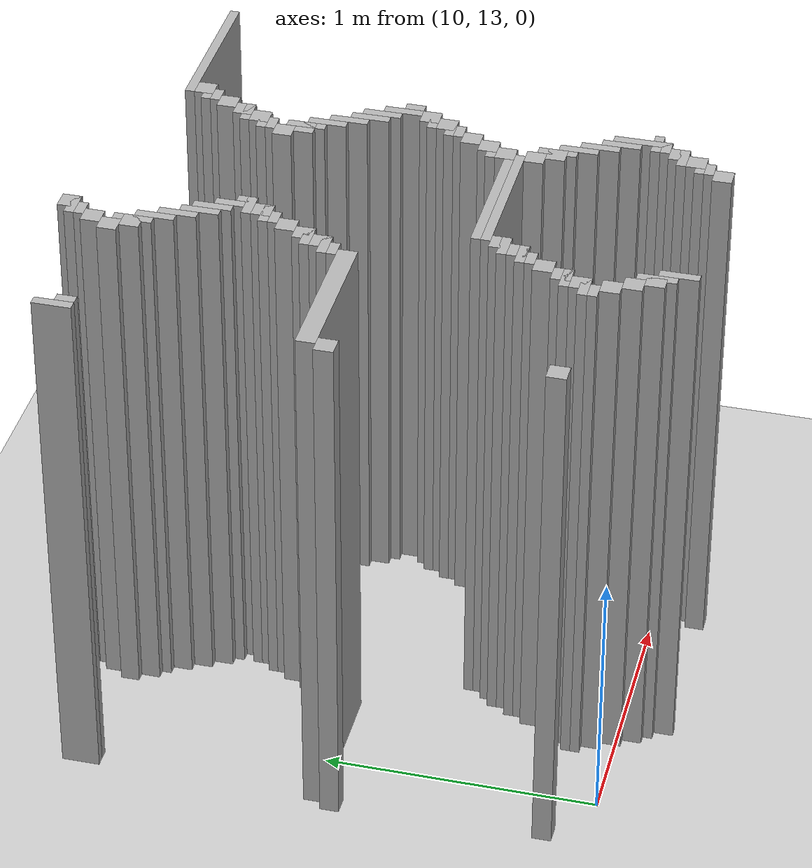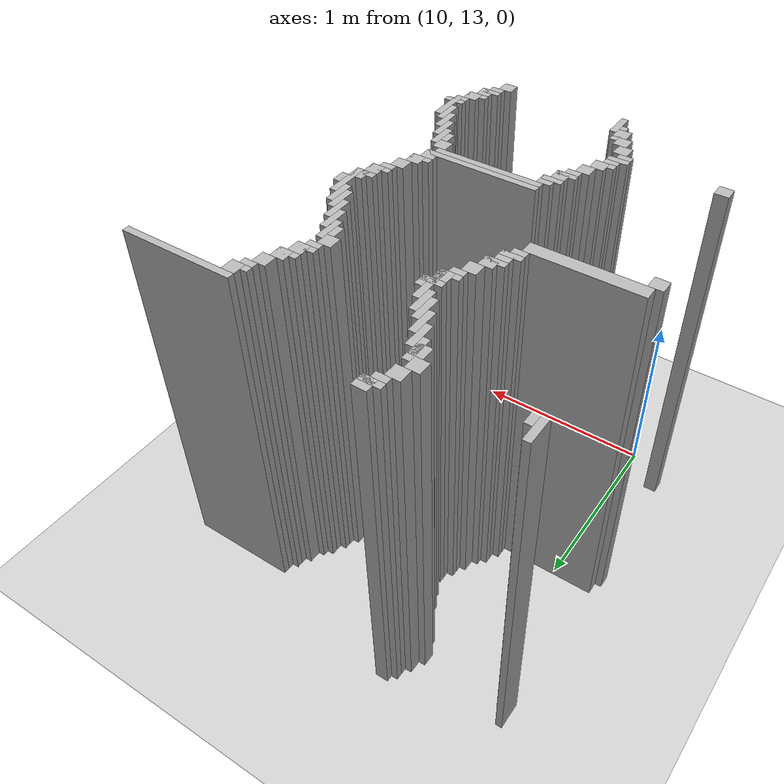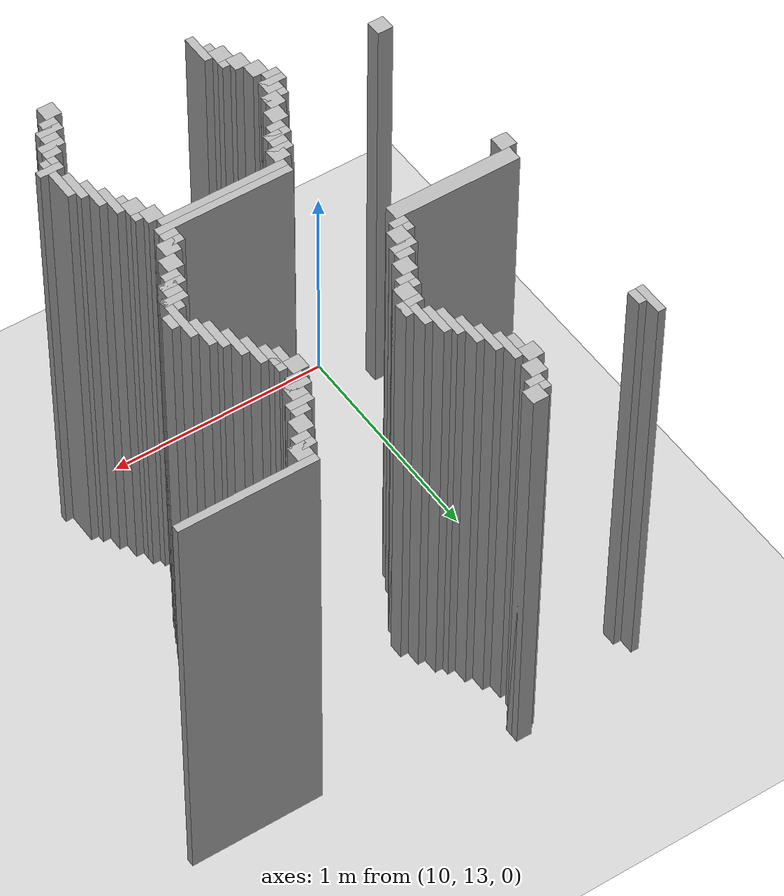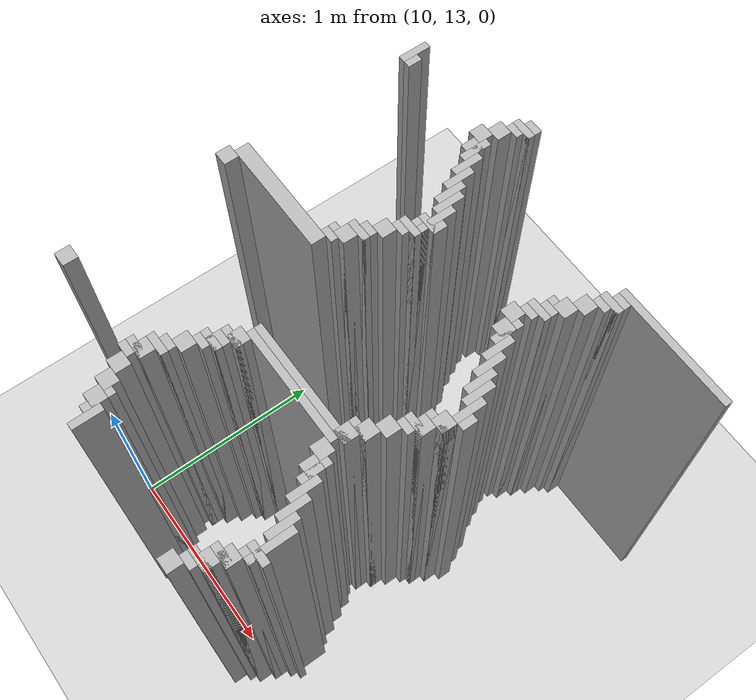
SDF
<sdf version="1.6">
 <world name="slam_world">
  <model name="ground_plane">
   <static>true</static>
   <link name="link">
    <collision name="collision">
     <geometry><plane><normal>0 0 1</normal><size>100 100</size></plane></geometry>
    </collision>
    <visual name="visual">
     <geometry><plane><normal>0 0 1</normal><size>100 100</size></plane></geometry>
     <material>
      <ambient>0.8 0.8 0.8 1</ambient>
      <diffuse>0.8 0.8 0.8 1</diffuse>
      <specular>0.8 0.8 0.8 1</specular>
     </material>
    </visual>
   </link>
  </model>
  <model name="wall_802">
   <static>true</static>
   <pose>10.406032482598608 15.0 1.0 0 0 0</pose>
   <link name="link">
    <collision name="collision">
     <geometry><box><size>0.06960556844547564 0.06960556844547564 2.0</size></box></geometry>
    </collision>
    <visual name="visual">
     <geometry><box><size>0.06960556844547564 0.06960556844547564 2.0</size></box></geometry>
     <material><ambient>0.5 0.5 0.5 1</ambient><diffuse>0.7 0.7 0.7 1</diffuse></material>
    </visual>
   </link>
  </model>
  <model name="wall_814">
   <static>true</static>
   <pose>10.38863109048724 14.982598607888631 1.0 0 0 0</pose>
   <link name="link">
    <collision name="collision">
     <geometry><box><size>0.10440835266821345 0.03480278422273782 2.0</size></box></geometry>
    </collision>
    <visual name="visual">
     <geometry><box><size>0.10440835266821345 0.03480278422273782 2.0</size></box></geometry>
     <material><ambient>0.5 0.5 0.5 1</ambient><diffuse>0.7 0.7 0.7 1</diffuse></material>
    </visual>
   </link>
  </model>
  <model name="wall_822">
   <static>true</static>
   <pose>10.37122969837587 14.947795823665892 1.0 0 0 0</pose>
   <link name="link">
    <collision name="collision">
     <geometry><box><size>0.06960556844547564 0.03480278422273782 2.0</size></box></geometry>
    </collision>
    <visual name="visual">
     <geometry><box><size>0.06960556844547564 0.03480278422273782 2.0</size></box></geometry>
     <material><ambient>0.5 0.5 0.5 1</ambient><diffuse>0.7 0.7 0.7 1</diffuse></material>
    </visual>
   </link>
  </model>
  <model name="wall_833">
   <static>true</static>
   <pose>9.796983758700696 14.860788863109049 1.0 0 0 0</pose>
   <link name="link">
    <collision name="collision">
     <geometry><box><size>0.03480278422273782 0.13921113689095127 2.0</size></box></geometry>
    </collision>
    <visual name="visual">
     <geometry><box><size>0.03480278422273782 0.13921113689095127 2.0</size></box></geometry>
     <material><ambient>0.5 0.5 0.5 1</ambient><diffuse>0.7 0.7 0.7 1</diffuse></material>
    </visual>
   </link>
  </model>
  <model name="wall_834">
   <static>true</static>
   <pose>10.336426914153131 14.895591647331786 1.0 0 0 0</pose>
   <link name="link">
    <collision name="collision">
     <geometry><box><size>0.06960556844547564 0.06960556844547564 2.0</size></box></geometry>
    </collision>
    <visual name="visual">
     <geometry><box><size>0.06960556844547564 0.06960556844547564 2.0</size></box></geometry>
     <material><ambient>0.5 0.5 0.5 1</ambient><diffuse>0.7 0.7 0.7 1</diffuse></material>
    </visual>
   </link>
  </model>
  <model name="wall_852">
   <static>true</static>
   <pose>9.831786542923433 14.825986078886311 1.0 0 0 0</pose>
   <link name="link">
    <collision name="collision">
     <geometry><box><size>0.03480278422273782 0.06960556844547564 2.0</size></box></geometry>
    </collision>
    <visual name="visual">
     <geometry><box><size>0.03480278422273782 0.06960556844547564 2.0</size></box></geometry>
     <material><ambient>0.5 0.5 0.5 1</ambient><diffuse>0.7 0.7 0.7 1</diffuse></material>
    </visual>
   </link>
  </model>
  <model name="wall_853">
   <static>true</static>
   <pose>10.301624129930394 14.825986078886311 1.0 0 0 0</pose>
   <link name="link">
    <collision name="collision">
     <geometry><box><size>0.06960556844547564 0.06960556844547564 2.0</size></box></geometry>
    </collision>
    <visual name="visual">
     <geometry><box><size>0.06960556844547564 0.06960556844547564 2.0</size></box></geometry>
     <material><ambient>0.5 0.5 0.5 1</ambient><diffuse>0.7 0.7 0.7 1</diffuse></material>
    </visual>
   </link>
  </model>
  <model name="wall_864">
   <static>true</static>
   <pose>10.3538283062645 14.756380510440835 1.0 0 0 0</pose>
   <link name="link">
    <collision name="collision">
     <geometry><box><size>0.03480278422273782 0.13921113689095127 2.0</size></box></geometry>
    </collision>
    <visual name="visual">
     <geometry><box><size>0.03480278422273782 0.13921113689095127 2.0</size></box></geometry>
     <material><ambient>0.5 0.5 0.5 1</ambient><diffuse>0.7 0.7 0.7 1</diffuse></material>
    </visual>
   </link>
  </model>
  <model name="wall_865">
   <static>true</static>
   <pose>11.502320185614849 14.80858468677494 1.0 0 0 0</pose>
   <link name="link">
    <collision name="collision">
     <geometry><box><size>0.5916473317865429 0.03480278422273782 2.0</size></box></geometry>
    </collision>
    <visual name="visual">
     <geometry><box><size>0.5916473317865429 0.03480278422273782 2.0</size></box></geometry>
     <material><ambient>0.5 0.5 0.5 1</ambient><diffuse>0.7 0.7 0.7 1</diffuse></material>
    </visual>
   </link>
  </model>
  <model name="wall_875">
   <static>true</static>
   <pose>10.336426914153131 14.756380510440835 1.0 0 0 0</pose>
   <link name="link">
    <collision name="collision">
     <geometry><box><size>0.06960556844547564 0.06960556844547564 2.0</size></box></geometry>
    </collision>
    <visual name="visual">
     <geometry><box><size>0.06960556844547564 0.06960556844547564 2.0</size></box></geometry>
     <material><ambient>0.5 0.5 0.5 1</ambient><diffuse>0.7 0.7 0.7 1</diffuse></material>
    </visual>
   </link>
  </model>
  <model name="wall_876">
   <static>true</static>
   <pose>11.241299303944315 14.756380510440835 1.0 0 0 0</pose>
   <link name="link">
    <collision name="collision">
     <geometry><box><size>0.06960556844547564 0.06960556844547564 2.0</size></box></geometry>
    </collision>
    <visual name="visual">
     <geometry><box><size>0.06960556844547564 0.06960556844547564 2.0</size></box></geometry>
     <material><ambient>0.5 0.5 0.5 1</ambient><diffuse>0.7 0.7 0.7 1</diffuse></material>
    </visual>
   </link>
  </model>
  <model name="wall_887">
   <static>true</static>
   <pose>10.38863109048724 14.68677494199536 1.0 0 0 0</pose>
   <link name="link">
    <collision name="collision">
     <geometry><box><size>0.03480278422273782 0.13921113689095127 2.0</size></box></geometry>
    </collision>
    <visual name="visual">
     <geometry><box><size>0.03480278422273782 0.13921113689095127 2.0</size></box></geometry>
     <material><ambient>0.5 0.5 0.5 1</ambient><diffuse>0.7 0.7 0.7 1</diffuse></material>
    </visual>
   </link>
  </model>
  <model name="wall_888">
   <static>true</static>
   <pose>11.223897911832946 14.738979118329466 1.0 0 0 0</pose>
   <link name="link">
    <collision name="collision">
     <geometry><box><size>0.10440835266821345 0.03480278422273782 2.0</size></box></geometry>
    </collision>
    <visual name="visual">
     <geometry><box><size>0.10440835266821345 0.03480278422273782 2.0</size></box></geometry>
     <material><ambient>0.5 0.5 0.5 1</ambient><diffuse>0.7 0.7 0.7 1</diffuse></material>
    </visual>
   </link>
  </model>
  <model name="wall_896">
   <static>true</static>
   <pose>11.206496519721577 14.704176334106728 1.0 0 0 0</pose>
   <link name="link">
    <collision name="collision">
     <geometry><box><size>0.06960556844547564 0.03480278422273782 2.0</size></box></geometry>
    </collision>
    <visual name="visual">
     <geometry><box><size>0.06960556844547564 0.03480278422273782 2.0</size></box></geometry>
     <material><ambient>0.5 0.5 0.5 1</ambient><diffuse>0.7 0.7 0.7 1</diffuse></material>
    </visual>
   </link>
  </model>
  <model name="wall_907">
   <static>true</static>
   <pose>10.423433874709977 14.617169373549883 1.0 0 0 0</pose>
   <link name="link">
    <collision name="collision">
     <geometry><box><size>0.03480278422273782 0.13921113689095127 2.0</size></box></geometry>
    </collision>
    <visual name="visual">
     <geometry><box><size>0.03480278422273782 0.13921113689095127 2.0</size></box></geometry>
     <material><ambient>0.5 0.5 0.5 1</ambient><diffuse>0.7 0.7 0.7 1</diffuse></material>
    </visual>
   </link>
  </model>
  <model name="wall_908">
   <static>true</static>
   <pose>11.17169373549884 14.65197215777262 1.0 0 0 0</pose>
   <link name="link">
    <collision name="collision">
     <geometry><box><size>0.06960556844547564 0.06960556844547564 2.0</size></box></geometry>
    </collision>
    <visual name="visual">
     <geometry><box><size>0.06960556844547564 0.06960556844547564 2.0</size></box></geometry>
     <material><ambient>0.5 0.5 0.5 1</ambient><diffuse>0.7 0.7 0.7 1</diffuse></material>
    </visual>
   </link>
  </model>
  <model name="wall_919">
   <static>true</static>
   <pose>10.458236658932714 14.547563805104408 1.0 0 0 0</pose>
   <link name="link">
    <collision name="collision">
     <geometry><box><size>0.03480278422273782 0.13921113689095127 2.0</size></box></geometry>
    </collision>
    <visual name="visual">
     <geometry><box><size>0.03480278422273782 0.13921113689095127 2.0</size></box></geometry>
     <material><ambient>0.5 0.5 0.5 1</ambient><diffuse>0.7 0.7 0.7 1</diffuse></material>
    </visual>
   </link>
  </model>
  <model name="wall_920">
   <static>true</static>
   <pose>11.1368909512761 14.582366589327146 1.0 0 0 0</pose>
   <link name="link">
    <collision name="collision">
     <geometry><box><size>0.06960556844547564 0.06960556844547564 2.0</size></box></geometry>
    </collision>
    <visual name="visual">
     <geometry><box><size>0.06960556844547564 0.06960556844547564 2.0</size></box></geometry>
     <material><ambient>0.5 0.5 0.5 1</ambient><diffuse>0.7 0.7 0.7 1</diffuse></material>
    </visual>
   </link>
  </model>
  <model name="wall_931">
   <static>true</static>
   <pose>10.493039443155451 14.512761020881669 1.0 0 0 0</pose>
   <link name="link">
    <collision name="collision">
     <geometry><box><size>0.03480278422273782 0.13921113689095127 2.0</size></box></geometry>
    </collision>
    <visual name="visual">
     <geometry><box><size>0.03480278422273782 0.13921113689095127 2.0</size></box></geometry>
     <material><ambient>0.5 0.5 0.5 1</ambient><diffuse>0.7 0.7 0.7 1</diffuse></material>
    </visual>
   </link>
  </model>
  <model name="wall_932">
   <static>true</static>
   <pose>11.119489559164732 14.564965197215777 1.0 0 0 0</pose>
   <link name="link">
    <collision name="collision">
     <geometry><box><size>0.10440835266821345 0.03480278422273782 2.0</size></box></geometry>
    </collision>
    <visual name="visual">
     <geometry><box><size>0.10440835266821345 0.03480278422273782 2.0</size></box></geometry>
     <material><ambient>0.5 0.5 0.5 1</ambient><diffuse>0.7 0.7 0.7 1</diffuse></material>
    </visual>
   </link>
  </model>
  <model name="wall_940">
   <static>true</static>
   <pose>11.102088167053363 14.512761020881669 1.0 0 0 0</pose>
   <link name="link">
    <collision name="collision">
     <geometry><box><size>0.06960556844547564 0.06960556844547564 2.0</size></box></geometry>
    </collision>
    <visual name="visual">
     <geometry><box><size>0.06960556844547564 0.06960556844547564 2.0</size></box></geometry>
     <material><ambient>0.5 0.5 0.5 1</ambient><diffuse>0.7 0.7 0.7 1</diffuse></material>
    </visual>
   </link>
  </model>
  <model name="wall_950">
   <static>true</static>
   <pose>10.52784222737819 14.408352668213457 1.0 0 0 0</pose>
   <link name="link">
    <collision name="collision">
     <geometry><box><size>0.03480278422273782 0.2088167053364269 2.0</size></box></geometry>
    </collision>
    <visual name="visual">
     <geometry><box><size>0.03480278422273782 0.2088167053364269 2.0</size></box></geometry>
     <material><ambient>0.5 0.5 0.5 1</ambient><diffuse>0.7 0.7 0.7 1</diffuse></material>
    </visual>
   </link>
  </model>
  <model name="wall_951">
   <static>true</static>
   <pose>11.084686774941995 14.4953596287703 1.0 0 0 0</pose>
   <link name="link">
    <collision name="collision">
     <geometry><box><size>0.10440835266821345 0.03480278422273782 2.0</size></box></geometry>
    </collision>
    <visual name="visual">
     <geometry><box><size>0.10440835266821345 0.03480278422273782 2.0</size></box></geometry>
     <material><ambient>0.5 0.5 0.5 1</ambient><diffuse>0.7 0.7 0.7 1</diffuse></material>
    </visual>
   </link>
  </model>
  <model name="wall_959">
   <static>true</static>
   <pose>11.067285382830626 14.460556844547563 1.0 0 0 0</pose>
   <link name="link">
    <collision name="collision">
     <geometry><box><size>0.06960556844547564 0.03480278422273782 2.0</size></box></geometry>
    </collision>
    <visual name="visual">
     <geometry><box><size>0.06960556844547564 0.03480278422273782 2.0</size></box></geometry>
     <material><ambient>0.5 0.5 0.5 1</ambient><diffuse>0.7 0.7 0.7 1</diffuse></material>
    </visual>
   </link>
  </model>
  <model name="wall_972">
   <static>true</static>
   <pose>10.562645011600928 14.408352668213457 1.0 0 0 0</pose>
   <link name="link">
    <collision name="collision">
     <geometry><box><size>0.03480278422273782 0.06960556844547564 2.0</size></box></geometry>
    </collision>
    <visual name="visual">
     <geometry><box><size>0.03480278422273782 0.06960556844547564 2.0</size></box></geometry>
     <material><ambient>0.5 0.5 0.5 1</ambient><diffuse>0.7 0.7 0.7 1</diffuse></material>
    </visual>
   </link>
  </model>
  <model name="wall_973">
   <static>true</static>
   <pose>11.032482598607888 14.408352668213457 1.0 0 0 0</pose>
   <link name="link">
    <collision name="collision">
     <geometry><box><size>0.06960556844547564 0.06960556844547564 2.0</size></box></geometry>
    </collision>
    <visual name="visual">
     <geometry><box><size>0.06960556844547564 0.06960556844547564 2.0</size></box></geometry>
     <material><ambient>0.5 0.5 0.5 1</ambient><diffuse>0.7 0.7 0.7 1</diffuse></material>
    </visual>
   </link>
  </model>
  <model name="wall_986">
   <static>true</static>
   <pose>10.52784222737819 14.390951276102088 1.0 0 0 0</pose>
   <link name="link">
    <collision name="collision">
     <geometry><box><size>0.10440835266821345 0.03480278422273782 2.0</size></box></geometry>
    </collision>
    <visual name="visual">
     <geometry><box><size>0.10440835266821345 0.03480278422273782 2.0</size></box></geometry>
     <material><ambient>0.5 0.5 0.5 1</ambient><diffuse>0.7 0.7 0.7 1</diffuse></material>
    </visual>
   </link>
  </model>
  <model name="wall_987">
   <static>true</static>
   <pose>11.084686774941995 14.33874709976798 1.0 0 0 0</pose>
   <link name="link">
    <collision name="collision">
     <geometry><box><size>0.03480278422273782 0.13921113689095127 2.0</size></box></geometry>
    </collision>
    <visual name="visual">
     <geometry><box><size>0.03480278422273782 0.13921113689095127 2.0</size></box></geometry>
     <material><ambient>0.5 0.5 0.5 1</ambient><diffuse>0.7 0.7 0.7 1</diffuse></material>
    </visual>
   </link>
  </model>
  <model name="wall_1001">
   <static>true</static>
   <pose>10.51044083526682 14.33874709976798 1.0 0 0 0</pose>
   <link name="link">
    <collision name="collision">
     <geometry><box><size>0.06960556844547564 0.06960556844547564 2.0</size></box></geometry>
    </collision>
    <visual name="visual">
     <geometry><box><size>0.06960556844547564 0.06960556844547564 2.0</size></box></geometry>
     <material><ambient>0.5 0.5 0.5 1</ambient><diffuse>0.7 0.7 0.7 1</diffuse></material>
    </visual>
   </link>
  </model>
  <model name="wall_1002">
   <static>true</static>
   <pose>11.067285382830626 14.33874709976798 1.0 0 0 0</pose>
   <link name="link">
    <collision name="collision">
     <geometry><box><size>0.06960556844547564 0.06960556844547564 2.0</size></box></geometry>
    </collision>
    <visual name="visual">
     <geometry><box><size>0.06960556844547564 0.06960556844547564 2.0</size></box></geometry>
     <material><ambient>0.5 0.5 0.5 1</ambient><diffuse>0.7 0.7 0.7 1</diffuse></material>
    </visual>
   </link>
  </model>
  <model name="wall_1016">
   <static>true</static>
   <pose>10.493039443155451 14.321345707656612 1.0 0 0 0</pose>
   <link name="link">
    <collision name="collision">
     <geometry><box><size>0.10440835266821345 0.03480278422273782 2.0</size></box></geometry>
    </collision>
    <visual name="visual">
     <geometry><box><size>0.10440835266821345 0.03480278422273782 2.0</size></box></geometry>
     <material><ambient>0.5 0.5 0.5 1</ambient><diffuse>0.7 0.7 0.7 1</diffuse></material>
    </visual>
   </link>
  </model>
  <model name="wall_1017">
   <static>true</static>
   <pose>11.119489559164732 14.269141531322505 1.0 0 0 0</pose>
   <link name="link">
    <collision name="collision">
     <geometry><box><size>0.03480278422273782 0.13921113689095127 2.0</size></box></geometry>
    </collision>
    <visual name="visual">
     <geometry><box><size>0.03480278422273782 0.13921113689095127 2.0</size></box></geometry>
     <material><ambient>0.5 0.5 0.5 1</ambient><diffuse>0.7 0.7 0.7 1</diffuse></material>
    </visual>
   </link>
  </model>
  <model name="wall_1028">
   <static>true</static>
   <pose>10.475638051044083 14.286542923433874 1.0 0 0 0</pose>
   <link name="link">
    <collision name="collision">
     <geometry><box><size>0.06960556844547564 0.03480278422273782 2.0</size></box></geometry>
    </collision>
    <visual name="visual">
     <geometry><box><size>0.06960556844547564 0.03480278422273782 2.0</size></box></geometry>
     <material><ambient>0.5 0.5 0.5 1</ambient><diffuse>0.7 0.7 0.7 1</diffuse></material>
    </visual>
   </link>
  </model>
  <model name="wall_1040">
   <static>true</static>
   <pose>10.440835266821345 14.234338747099768 1.0 0 0 0</pose>
   <link name="link">
    <collision name="collision">
     <geometry><box><size>0.06960556844547564 0.06960556844547564 2.0</size></box></geometry>
    </collision>
    <visual name="visual">
     <geometry><box><size>0.06960556844547564 0.06960556844547564 2.0</size></box></geometry>
     <material><ambient>0.5 0.5 0.5 1</ambient><diffuse>0.7 0.7 0.7 1</diffuse></material>
    </visual>
   </link>
  </model>
  <model name="wall_1041">
   <static>true</static>
   <pose>11.154292343387471 14.199535962877029 1.0 0 0 0</pose>
   <link name="link">
    <collision name="collision">
     <geometry><box><size>0.03480278422273782 0.13921113689095127 2.0</size></box></geometry>
    </collision>
    <visual name="visual">
     <geometry><box><size>0.03480278422273782 0.13921113689095127 2.0</size></box></geometry>
     <material><ambient>0.5 0.5 0.5 1</ambient><diffuse>0.7 0.7 0.7 1</diffuse></material>
    </visual>
   </link>
  </model>
  <model name="wall_1055">
   <static>true</static>
   <pose>10.406032482598608 14.164733178654291 1.0 0 0 0</pose>
   <link name="link">
    <collision name="collision">
     <geometry><box><size>0.06960556844547564 0.06960556844547564 2.0</size></box></geometry>
    </collision>
    <visual name="visual">
     <geometry><box><size>0.06960556844547564 0.06960556844547564 2.0</size></box></geometry>
     <material><ambient>0.5 0.5 0.5 1</ambient><diffuse>0.7 0.7 0.7 1</diffuse></material>
    </visual>
   </link>
  </model>
  <model name="wall_1056">
   <static>true</static>
   <pose>11.189095127610209 14.129930394431554 1.0 0 0 0</pose>
   <link name="link">
    <collision name="collision">
     <geometry><box><size>0.03480278422273782 0.13921113689095127 2.0</size></box></geometry>
    </collision>
    <visual name="visual">
     <geometry><box><size>0.03480278422273782 0.13921113689095127 2.0</size></box></geometry>
     <material><ambient>0.5 0.5 0.5 1</ambient><diffuse>0.7 0.7 0.7 1</diffuse></material>
    </visual>
   </link>
  </model>
  <model name="wall_1070">
   <static>true</static>
   <pose>10.38863109048724 14.147331786542923 1.0 0 0 0</pose>
   <link name="link">
    <collision name="collision">
     <geometry><box><size>0.10440835266821345 0.03480278422273782 2.0</size></box></geometry>
    </collision>
    <visual name="visual">
     <geometry><box><size>0.10440835266821345 0.03480278422273782 2.0</size></box></geometry>
     <material><ambient>0.5 0.5 0.5 1</ambient><diffuse>0.7 0.7 0.7 1</diffuse></material>
    </visual>
   </link>
  </model>
  <model name="wall_1071">
   <static>true</static>
   <pose>11.223897911832946 14.095127610208817 1.0 0 0 0</pose>
   <link name="link">
    <collision name="collision">
     <geometry><box><size>0.03480278422273782 0.13921113689095127 2.0</size></box></geometry>
    </collision>
    <visual name="visual">
     <geometry><box><size>0.03480278422273782 0.13921113689095127 2.0</size></box></geometry>
     <material><ambient>0.5 0.5 0.5 1</ambient><diffuse>0.7 0.7 0.7 1</diffuse></material>
    </visual>
   </link>
  </model>
  <model name="wall_1081">
   <static>true</static>
   <pose>10.37122969837587 14.095127610208817 1.0 0 0 0</pose>
   <link name="link">
    <collision name="collision">
     <geometry><box><size>0.06960556844547564 0.06960556844547564 2.0</size></box></geometry>
    </collision>
    <visual name="visual">
     <geometry><box><size>0.06960556844547564 0.06960556844547564 2.0</size></box></geometry>
     <material><ambient>0.5 0.5 0.5 1</ambient><diffuse>0.7 0.7 0.7 1</diffuse></material>
    </visual>
   </link>
  </model>
  <model name="wall_1093">
   <static>true</static>
   <pose>10.3538283062645 14.077726218097448 1.0 0 0 0</pose>
   <link name="link">
    <collision name="collision">
     <geometry><box><size>0.10440835266821345 0.03480278422273782 2.0</size></box></geometry>
    </collision>
    <visual name="visual">
     <geometry><box><size>0.10440835266821345 0.03480278422273782 2.0</size></box></geometry>
     <material><ambient>0.5 0.5 0.5 1</ambient><diffuse>0.7 0.7 0.7 1</diffuse></material>
    </visual>
   </link>
  </model>
  <model name="wall_1094">
   <static>true</static>
   <pose>11.258700696055683 13.990719257540603 1.0 0 0 0</pose>
   <link name="link">
    <collision name="collision">
     <geometry><box><size>0.03480278422273782 0.2088167053364269 2.0</size></box></geometry>
    </collision>
    <visual name="visual">
     <geometry><box><size>0.03480278422273782 0.2088167053364269 2.0</size></box></geometry>
     <material><ambient>0.5 0.5 0.5 1</ambient><diffuse>0.7 0.7 0.7 1</diffuse></material>
    </visual>
   </link>
  </model>
  <model name="wall_1104">
   <static>true</static>
   <pose>10.336426914153131 14.042923433874709 1.0 0 0 0</pose>
   <link name="link">
    <collision name="collision">
     <geometry><box><size>0.06960556844547564 0.03480278422273782 2.0</size></box></geometry>
    </collision>
    <visual name="visual">
     <geometry><box><size>0.06960556844547564 0.03480278422273782 2.0</size></box></geometry>
     <material><ambient>0.5 0.5 0.5 1</ambient><diffuse>0.7 0.7 0.7 1</diffuse></material>
    </visual>
   </link>
  </model>
  <model name="wall_1114">
   <static>true</static>
   <pose>10.058004640371228 13.990719257540603 1.0 0 0 0</pose>
   <link name="link">
    <collision name="collision">
     <geometry><box><size>0.5568445475638051 0.06960556844547564 2.0</size></box></geometry>
    </collision>
    <visual name="visual">
     <geometry><box><size>0.5568445475638051 0.06960556844547564 2.0</size></box></geometry>
     <material><ambient>0.5 0.5 0.5 1</ambient><diffuse>0.7 0.7 0.7 1</diffuse></material>
    </visual>
   </link>
  </model>
  <model name="wall_1115">
   <static>true</static>
   <pose>11.293503480278423 13.990719257540603 1.0 0 0 0</pose>
   <link name="link">
    <collision name="collision">
     <geometry><box><size>0.03480278422273782 0.06960556844547564 2.0</size></box></geometry>
    </collision>
    <visual name="visual">
     <geometry><box><size>0.03480278422273782 0.06960556844547564 2.0</size></box></geometry>
     <material><ambient>0.5 0.5 0.5 1</ambient><diffuse>0.7 0.7 0.7 1</diffuse></material>
    </visual>
   </link>
  </model>
  <model name="wall_1130">
   <static>true</static>
   <pose>9.779582366589327 13.921113689095128 1.0 0 0 0</pose>
   <link name="link">
    <collision name="collision">
     <geometry><box><size>0.06960556844547564 0.06960556844547564 2.0</size></box></geometry>
    </collision>
    <visual name="visual">
     <geometry><box><size>0.06960556844547564 0.06960556844547564 2.0</size></box></geometry>
     <material><ambient>0.5 0.5 0.5 1</ambient><diffuse>0.7 0.7 0.7 1</diffuse></material>
    </visual>
   </link>
  </model>
  <model name="wall_1131">
   <static>true</static>
   <pose>11.241299303944315 13.921113689095128 1.0 0 0 0</pose>
   <link name="link">
    <collision name="collision">
     <geometry><box><size>0.06960556844547564 0.06960556844547564 2.0</size></box></geometry>
    </collision>
    <visual name="visual">
     <geometry><box><size>0.06960556844547564 0.06960556844547564 2.0</size></box></geometry>
     <material><ambient>0.5 0.5 0.5 1</ambient><diffuse>0.7 0.7 0.7 1</diffuse></material>
    </visual>
   </link>
  </model>
  <model name="wall_1146">
   <static>true</static>
   <pose>11.223897911832946 13.903712296983759 1.0 0 0 0</pose>
   <link name="link">
    <collision name="collision">
     <geometry><box><size>0.10440835266821345 0.03480278422273782 2.0</size></box></geometry>
    </collision>
    <visual name="visual">
     <geometry><box><size>0.10440835266821345 0.03480278422273782 2.0</size></box></geometry>
     <material><ambient>0.5 0.5 0.5 1</ambient><diffuse>0.7 0.7 0.7 1</diffuse></material>
    </visual>
   </link>
  </model>
  <model name="wall_1161">
   <static>true</static>
   <pose>11.206496519721577 13.851508120649651 1.0 0 0 0</pose>
   <link name="link">
    <collision name="collision">
     <geometry><box><size>0.06960556844547564 0.06960556844547564 2.0</size></box></geometry>
    </collision>
    <visual name="visual">
     <geometry><box><size>0.06960556844547564 0.06960556844547564 2.0</size></box></geometry>
     <material><ambient>0.5 0.5 0.5 1</ambient><diffuse>0.7 0.7 0.7 1</diffuse></material>
    </visual>
   </link>
  </model>
  <model name="wall_1176">
   <static>true</static>
   <pose>11.189095127610209 13.834106728538282 1.0 0 0 0</pose>
   <link name="link">
    <collision name="collision">
     <geometry><box><size>0.10440835266821345 0.03480278422273782 2.0</size></box></geometry>
    </collision>
    <visual name="visual">
     <geometry><box><size>0.10440835266821345 0.03480278422273782 2.0</size></box></geometry>
     <material><ambient>0.5 0.5 0.5 1</ambient><diffuse>0.7 0.7 0.7 1</diffuse></material>
    </visual>
   </link>
  </model>
  <model name="wall_1185">
   <static>true</static>
   <pose>11.17169373549884 13.799303944315545 1.0 0 0 0</pose>
   <link name="link">
    <collision name="collision">
     <geometry><box><size>0.06960556844547564 0.03480278422273782 2.0</size></box></geometry>
    </collision>
    <visual name="visual">
     <geometry><box><size>0.06960556844547564 0.03480278422273782 2.0</size></box></geometry>
     <material><ambient>0.5 0.5 0.5 1</ambient><diffuse>0.7 0.7 0.7 1</diffuse></material>
    </visual>
   </link>
  </model>
  <model name="wall_1198">
   <static>true</static>
   <pose>11.1368909512761 13.747099767981437 1.0 0 0 0</pose>
   <link name="link">
    <collision name="collision">
     <geometry><box><size>0.06960556844547564 0.06960556844547564 2.0</size></box></geometry>
    </collision>
    <visual name="visual">
     <geometry><box><size>0.06960556844547564 0.06960556844547564 2.0</size></box></geometry>
     <material><ambient>0.5 0.5 0.5 1</ambient><diffuse>0.7 0.7 0.7 1</diffuse></material>
    </visual>
   </link>
  </model>
  <model name="wall_1213">
   <static>true</static>
   <pose>11.102088167053363 13.677494199535962 1.0 0 0 0</pose>
   <link name="link">
    <collision name="collision">
     <geometry><box><size>0.06960556844547564 0.06960556844547564 2.0</size></box></geometry>
    </collision>
    <visual name="visual">
     <geometry><box><size>0.06960556844547564 0.06960556844547564 2.0</size></box></geometry>
     <material><ambient>0.5 0.5 0.5 1</ambient><diffuse>0.7 0.7 0.7 1</diffuse></material>
    </visual>
   </link>
  </model>
  <model name="wall_1228">
   <static>true</static>
   <pose>11.084686774941995 13.660092807424594 1.0 0 0 0</pose>
   <link name="link">
    <collision name="collision">
     <geometry><box><size>0.10440835266821345 0.03480278422273782 2.0</size></box></geometry>
    </collision>
    <visual name="visual">
     <geometry><box><size>0.10440835266821345 0.03480278422273782 2.0</size></box></geometry>
     <material><ambient>0.5 0.5 0.5 1</ambient><diffuse>0.7 0.7 0.7 1</diffuse></material>
    </visual>
   </link>
  </model>
  <model name="wall_1237">
   <static>true</static>
   <pose>11.067285382830626 13.607888631090487 1.0 0 0 0</pose>
   <link name="link">
    <collision name="collision">
     <geometry><box><size>0.06960556844547564 0.06960556844547564 2.0</size></box></geometry>
    </collision>
    <visual name="visual">
     <geometry><box><size>0.06960556844547564 0.06960556844547564 2.0</size></box></geometry>
     <material><ambient>0.5 0.5 0.5 1</ambient><diffuse>0.7 0.7 0.7 1</diffuse></material>
    </visual>
   </link>
  </model>
  <model name="wall_1247">
   <static>true</static>
   <pose>10.806264501160092 13.590487238979117 1.0 0 0 0</pose>
   <link name="link">
    <collision name="collision">
     <geometry><box><size>0.5916473317865429 0.03480278422273782 2.0</size></box></geometry>
    </collision>
    <visual name="visual">
     <geometry><box><size>0.5916473317865429 0.03480278422273782 2.0</size></box></geometry>
     <material><ambient>0.5 0.5 0.5 1</ambient><diffuse>0.7 0.7 0.7 1</diffuse></material>
    </visual>
   </link>
  </model>
  <model name="wall_1256">
   <static>true</static>
   <pose>10.788863109048723 13.55568445475638 1.0 0 0 0</pose>
   <link name="link">
    <collision name="collision">
     <geometry><box><size>0.5568445475638051 0.03480278422273782 2.0</size></box></geometry>
    </collision>
    <visual name="visual">
     <geometry><box><size>0.5568445475638051 0.03480278422273782 2.0</size></box></geometry>
     <material><ambient>0.5 0.5 0.5 1</ambient><diffuse>0.7 0.7 0.7 1</diffuse></material>
    </visual>
   </link>
  </model>
  <model name="wall_1265">
   <static>true</static>
   <pose>10.51044083526682 13.503480278422273 1.0 0 0 0</pose>
   <link name="link">
    <collision name="collision">
     <geometry><box><size>0.06960556844547564 0.06960556844547564 2.0</size></box></geometry>
    </collision>
    <visual name="visual">
     <geometry><box><size>0.06960556844547564 0.06960556844547564 2.0</size></box></geometry>
     <material><ambient>0.5 0.5 0.5 1</ambient><diffuse>0.7 0.7 0.7 1</diffuse></material>
    </visual>
   </link>
  </model>
  <model name="wall_1266">
   <static>true</static>
   <pose>11.067285382830626 13.503480278422273 1.0 0 0 0</pose>
   <link name="link">
    <collision name="collision">
     <geometry><box><size>0.06960556844547564 0.06960556844547564 2.0</size></box></geometry>
    </collision>
    <visual name="visual">
     <geometry><box><size>0.06960556844547564 0.06960556844547564 2.0</size></box></geometry>
     <material><ambient>0.5 0.5 0.5 1</ambient><diffuse>0.7 0.7 0.7 1</diffuse></material>
    </visual>
   </link>
  </model>
  <model name="wall_1277">
   <static>true</static>
   <pose>10.493039443155451 13.486078886310905 1.0 0 0 0</pose>
   <link name="link">
    <collision name="collision">
     <geometry><box><size>0.10440835266821345 0.03480278422273782 2.0</size></box></geometry>
    </collision>
    <visual name="visual">
     <geometry><box><size>0.10440835266821345 0.03480278422273782 2.0</size></box></geometry>
     <material><ambient>0.5 0.5 0.5 1</ambient><diffuse>0.7 0.7 0.7 1</diffuse></material>
    </visual>
   </link>
  </model>
  <model name="wall_1278">
   <static>true</static>
   <pose>11.119489559164732 13.433874709976797 1.0 0 0 0</pose>
   <link name="link">
    <collision name="collision">
     <geometry><box><size>0.03480278422273782 0.13921113689095127 2.0</size></box></geometry>
    </collision>
    <visual name="visual">
     <geometry><box><size>0.03480278422273782 0.13921113689095127 2.0</size></box></geometry>
     <material><ambient>0.5 0.5 0.5 1</ambient><diffuse>0.7 0.7 0.7 1</diffuse></material>
    </visual>
   </link>
  </model>
  <model name="wall_1289">
   <static>true</static>
   <pose>10.475638051044083 13.433874709976797 1.0 0 0 0</pose>
   <link name="link">
    <collision name="collision">
     <geometry><box><size>0.06960556844547564 0.06960556844547564 2.0</size></box></geometry>
    </collision>
    <visual name="visual">
     <geometry><box><size>0.06960556844547564 0.06960556844547564 2.0</size></box></geometry>
     <material><ambient>0.5 0.5 0.5 1</ambient><diffuse>0.7 0.7 0.7 1</diffuse></material>
    </visual>
   </link>
  </model>
  <model name="wall_1290">
   <static>true</static>
   <pose>11.102088167053363 13.433874709976797 1.0 0 0 0</pose>
   <link name="link">
    <collision name="collision">
     <geometry><box><size>0.06960556844547564 0.06960556844547564 2.0</size></box></geometry>
    </collision>
    <visual name="visual">
     <geometry><box><size>0.06960556844547564 0.06960556844547564 2.0</size></box></geometry>
     <material><ambient>0.5 0.5 0.5 1</ambient><diffuse>0.7 0.7 0.7 1</diffuse></material>
    </visual>
   </link>
  </model>
  <model name="wall_1301">
   <static>true</static>
   <pose>10.458236658932714 13.416473317865428 1.0 0 0 0</pose>
   <link name="link">
    <collision name="collision">
     <geometry><box><size>0.10440835266821345 0.03480278422273782 2.0</size></box></geometry>
    </collision>
    <visual name="visual">
     <geometry><box><size>0.10440835266821345 0.03480278422273782 2.0</size></box></geometry>
     <material><ambient>0.5 0.5 0.5 1</ambient><diffuse>0.7 0.7 0.7 1</diffuse></material>
    </visual>
   </link>
  </model>
  <model name="wall_1302">
   <static>true</static>
   <pose>11.154292343387471 13.364269141531322 1.0 0 0 0</pose>
   <link name="link">
    <collision name="collision">
     <geometry><box><size>0.03480278422273782 0.13921113689095127 2.0</size></box></geometry>
    </collision>
    <visual name="visual">
     <geometry><box><size>0.03480278422273782 0.13921113689095127 2.0</size></box></geometry>
     <material><ambient>0.5 0.5 0.5 1</ambient><diffuse>0.7 0.7 0.7 1</diffuse></material>
    </visual>
   </link>
  </model>
  <model name="wall_1310">
   <static>true</static>
   <pose>10.440835266821345 13.38167053364269 1.0 0 0 0</pose>
   <link name="link">
    <collision name="collision">
     <geometry><box><size>0.06960556844547564 0.03480278422273782 2.0</size></box></geometry>
    </collision>
    <visual name="visual">
     <geometry><box><size>0.06960556844547564 0.03480278422273782 2.0</size></box></geometry>
     <material><ambient>0.5 0.5 0.5 1</ambient><diffuse>0.7 0.7 0.7 1</diffuse></material>
    </visual>
   </link>
  </model>
  <model name="wall_1319">
   <static>true</static>
   <pose>10.406032482598608 13.329466357308585 1.0 0 0 0</pose>
   <link name="link">
    <collision name="collision">
     <geometry><box><size>0.06960556844547564 0.06960556844547564 2.0</size></box></geometry>
    </collision>
    <visual name="visual">
     <geometry><box><size>0.06960556844547564 0.06960556844547564 2.0</size></box></geometry>
     <material><ambient>0.5 0.5 0.5 1</ambient><diffuse>0.7 0.7 0.7 1</diffuse></material>
    </visual>
   </link>
  </model>
  <model name="wall_1320">
   <static>true</static>
   <pose>11.189095127610209 13.294663573085847 1.0 0 0 0</pose>
   <link name="link">
    <collision name="collision">
     <geometry><box><size>0.03480278422273782 0.13921113689095127 2.0</size></box></geometry>
    </collision>
    <visual name="visual">
     <geometry><box><size>0.03480278422273782 0.13921113689095127 2.0</size></box></geometry>
     <material><ambient>0.5 0.5 0.5 1</ambient><diffuse>0.7 0.7 0.7 1</diffuse></material>
    </visual>
   </link>
  </model>
  <model name="wall_1331">
   <static>true</static>
   <pose>10.37122969837587 13.259860788863108 1.0 0 0 0</pose>
   <link name="link">
    <collision name="collision">
     <geometry><box><size>0.06960556844547564 0.06960556844547564 2.0</size></box></geometry>
    </collision>
    <visual name="visual">
     <geometry><box><size>0.06960556844547564 0.06960556844547564 2.0</size></box></geometry>
     <material><ambient>0.5 0.5 0.5 1</ambient><diffuse>0.7 0.7 0.7 1</diffuse></material>
    </visual>
   </link>
  </model>
  <model name="wall_1332">
   <static>true</static>
   <pose>11.223897911832946 13.22505800464037 1.0 0 0 0</pose>
   <link name="link">
    <collision name="collision">
     <geometry><box><size>0.03480278422273782 0.13921113689095127 2.0</size></box></geometry>
    </collision>
    <visual name="visual">
     <geometry><box><size>0.03480278422273782 0.13921113689095127 2.0</size></box></geometry>
     <material><ambient>0.5 0.5 0.5 1</ambient><diffuse>0.7 0.7 0.7 1</diffuse></material>
    </visual>
   </link>
  </model>
  <model name="wall_1343">
   <static>true</static>
   <pose>10.3538283062645 13.24245939675174 1.0 0 0 0</pose>
   <link name="link">
    <collision name="collision">
     <geometry><box><size>0.10440835266821345 0.03480278422273782 2.0</size></box></geometry>
    </collision>
    <visual name="visual">
     <geometry><box><size>0.10440835266821345 0.03480278422273782 2.0</size></box></geometry>
     <material><ambient>0.5 0.5 0.5 1</ambient><diffuse>0.7 0.7 0.7 1</diffuse></material>
    </visual>
   </link>
  </model>
  <model name="wall_1344">
   <static>true</static>
   <pose>11.258700696055683 13.155452436194896 1.0 0 0 0</pose>
   <link name="link">
    <collision name="collision">
     <geometry><box><size>0.03480278422273782 0.2088167053364269 2.0</size></box></geometry>
    </collision>
    <visual name="visual">
     <geometry><box><size>0.03480278422273782 0.2088167053364269 2.0</size></box></geometry>
     <material><ambient>0.5 0.5 0.5 1</ambient><diffuse>0.7 0.7 0.7 1</diffuse></material>
    </visual>
   </link>
  </model>
  <model name="wall_1352">
   <static>true</static>
   <pose>10.336426914153131 13.190255220417633 1.0 0 0 0</pose>
   <link name="link">
    <collision name="collision">
     <geometry><box><size>0.06960556844547564 0.06960556844547564 2.0</size></box></geometry>
    </collision>
    <visual name="visual">
     <geometry><box><size>0.06960556844547564 0.06960556844547564 2.0</size></box></geometry>
     <material><ambient>0.5 0.5 0.5 1</ambient><diffuse>0.7 0.7 0.7 1</diffuse></material>
    </visual>
   </link>
  </model>
  <model name="wall_1361">
   <static>true</static>
   <pose>9.814385150812065 13.155452436194896 1.0 0 0 0</pose>
   <link name="link">
    <collision name="collision">
     <geometry><box><size>0.06960556844547564 0.06960556844547564 2.0</size></box></geometry>
    </collision>
    <visual name="visual">
     <geometry><box><size>0.06960556844547564 0.06960556844547564 2.0</size></box></geometry>
     <material><ambient>0.5 0.5 0.5 1</ambient><diffuse>0.7 0.7 0.7 1</diffuse></material>
    </visual>
   </link>
  </model>
  <model name="wall_1362">
   <static>true</static>
   <pose>10.319025522041763 13.172853828306264 1.0 0 0 0</pose>
   <link name="link">
    <collision name="collision">
     <geometry><box><size>0.10440835266821345 0.03480278422273782 2.0</size></box></geometry>
    </collision>
    <visual name="visual">
     <geometry><box><size>0.10440835266821345 0.03480278422273782 2.0</size></box></geometry>
     <material><ambient>0.5 0.5 0.5 1</ambient><diffuse>0.7 0.7 0.7 1</diffuse></material>
    </visual>
   </link>
  </model>
  <model name="wall_1370">
   <static>true</static>
   <pose>10.301624129930394 13.138051044083527 1.0 0 0 0</pose>
   <link name="link">
    <collision name="collision">
     <geometry><box><size>0.06960556844547564 0.03480278422273782 2.0</size></box></geometry>
    </collision>
    <visual name="visual">
     <geometry><box><size>0.06960556844547564 0.03480278422273782 2.0</size></box></geometry>
     <material><ambient>0.5 0.5 0.5 1</ambient><diffuse>0.7 0.7 0.7 1</diffuse></material>
    </visual>
   </link>
  </model>
  <model name="wall_1381">
   <static>true</static>
   <pose>10.336426914153131 13.085846867749419 1.0 0 0 0</pose>
   <link name="link">
    <collision name="collision">
     <geometry><box><size>0.06960556844547564 0.06960556844547564 2.0</size></box></geometry>
    </collision>
    <visual name="visual">
     <geometry><box><size>0.06960556844547564 0.06960556844547564 2.0</size></box></geometry>
     <material><ambient>0.5 0.5 0.5 1</ambient><diffuse>0.7 0.7 0.7 1</diffuse></material>
    </visual>
   </link>
  </model>
  <model name="wall_1382">
   <static>true</static>
   <pose>11.258700696055683 13.103248259860788 1.0 0 0 0</pose>
   <link name="link">
    <collision name="collision">
     <geometry><box><size>0.10440835266821345 0.03480278422273782 2.0</size></box></geometry>
    </collision>
    <visual name="visual">
     <geometry><box><size>0.10440835266821345 0.03480278422273782 2.0</size></box></geometry>
     <material><ambient>0.5 0.5 0.5 1</ambient><diffuse>0.7 0.7 0.7 1</diffuse></material>
    </visual>
   </link>
  </model>
  <model name="wall_1394">
   <static>true</static>
   <pose>11.241299303944315 13.06844547563805 1.0 0 0 0</pose>
   <link name="link">
    <collision name="collision">
     <geometry><box><size>0.06960556844547564 0.03480278422273782 2.0</size></box></geometry>
    </collision>
    <visual name="visual">
     <geometry><box><size>0.06960556844547564 0.03480278422273782 2.0</size></box></geometry>
     <material><ambient>0.5 0.5 0.5 1</ambient><diffuse>0.7 0.7 0.7 1</diffuse></material>
    </visual>
   </link>
  </model>
  <model name="wall_1408">
   <static>true</static>
   <pose>10.37122969837587 13.016241299303944 1.0 0 0 0</pose>
   <link name="link">
    <collision name="collision">
     <geometry><box><size>0.06960556844547564 0.06960556844547564 2.0</size></box></geometry>
    </collision>
    <visual name="visual">
     <geometry><box><size>0.06960556844547564 0.06960556844547564 2.0</size></box></geometry>
     <material><ambient>0.5 0.5 0.5 1</ambient><diffuse>0.7 0.7 0.7 1</diffuse></material>
    </visual>
   </link>
  </model>
  <model name="wall_1409">
   <static>true</static>
   <pose>11.206496519721577 13.016241299303944 1.0 0 0 0</pose>
   <link name="link">
    <collision name="collision">
     <geometry><box><size>0.06960556844547564 0.06960556844547564 2.0</size></box></geometry>
    </collision>
    <visual name="visual">
     <geometry><box><size>0.06960556844547564 0.06960556844547564 2.0</size></box></geometry>
     <material><ambient>0.5 0.5 0.5 1</ambient><diffuse>0.7 0.7 0.7 1</diffuse></material>
    </visual>
   </link>
  </model>
  <model name="wall_1423">
   <static>true</static>
   <pose>10.423433874709977 12.946635730858468 1.0 0 0 0</pose>
   <link name="link">
    <collision name="collision">
     <geometry><box><size>0.03480278422273782 0.13921113689095127 2.0</size></box></geometry>
    </collision>
    <visual name="visual">
     <geometry><box><size>0.03480278422273782 0.13921113689095127 2.0</size></box></geometry>
     <material><ambient>0.5 0.5 0.5 1</ambient><diffuse>0.7 0.7 0.7 1</diffuse></material>
    </visual>
   </link>
  </model>
  <model name="wall_1424">
   <static>true</static>
   <pose>11.189095127610209 12.998839907192576 1.0 0 0 0</pose>
   <link name="link">
    <collision name="collision">
     <geometry><box><size>0.10440835266821345 0.03480278422273782 2.0</size></box></geometry>
    </collision>
    <visual name="visual">
     <geometry><box><size>0.10440835266821345 0.03480278422273782 2.0</size></box></geometry>
     <material><ambient>0.5 0.5 0.5 1</ambient><diffuse>0.7 0.7 0.7 1</diffuse></material>
    </visual>
   </link>
  </model>
  <model name="wall_1438">
   <static>true</static>
   <pose>10.406032482598608 12.946635730858468 1.0 0 0 0</pose>
   <link name="link">
    <collision name="collision">
     <geometry><box><size>0.06960556844547564 0.06960556844547564 2.0</size></box></geometry>
    </collision>
    <visual name="visual">
     <geometry><box><size>0.06960556844547564 0.06960556844547564 2.0</size></box></geometry>
     <material><ambient>0.5 0.5 0.5 1</ambient><diffuse>0.7 0.7 0.7 1</diffuse></material>
    </visual>
   </link>
  </model>
  <model name="wall_1439">
   <static>true</static>
   <pose>11.17169373549884 12.946635730858468 1.0 0 0 0</pose>
   <link name="link">
    <collision name="collision">
     <geometry><box><size>0.06960556844547564 0.06960556844547564 2.0</size></box></geometry>
    </collision>
    <visual name="visual">
     <geometry><box><size>0.06960556844547564 0.06960556844547564 2.0</size></box></geometry>
     <material><ambient>0.5 0.5 0.5 1</ambient><diffuse>0.7 0.7 0.7 1</diffuse></material>
    </visual>
   </link>
  </model>
  <model name="wall_1453">
   <static>true</static>
   <pose>10.458236658932714 12.877030162412993 1.0 0 0 0</pose>
   <link name="link">
    <collision name="collision">
     <geometry><box><size>0.03480278422273782 0.13921113689095127 2.0</size></box></geometry>
    </collision>
    <visual name="visual">
     <geometry><box><size>0.03480278422273782 0.13921113689095127 2.0</size></box></geometry>
     <material><ambient>0.5 0.5 0.5 1</ambient><diffuse>0.7 0.7 0.7 1</diffuse></material>
    </visual>
   </link>
  </model>
  <model name="wall_1454">
   <static>true</static>
   <pose>11.154292343387471 12.929234338747099 1.0 0 0 0</pose>
   <link name="link">
    <collision name="collision">
     <geometry><box><size>0.10440835266821345 0.03480278422273782 2.0</size></box></geometry>
    </collision>
    <visual name="visual">
     <geometry><box><size>0.10440835266821345 0.03480278422273782 2.0</size></box></geometry>
     <material><ambient>0.5 0.5 0.5 1</ambient><diffuse>0.7 0.7 0.7 1</diffuse></material>
    </visual>
   </link>
  </model>
  <model name="wall_1465">
   <static>true</static>
   <pose>11.1368909512761 12.894431554524362 1.0 0 0 0</pose>
   <link name="link">
    <collision name="collision">
     <geometry><box><size>0.06960556844547564 0.03480278422273782 2.0</size></box></geometry>
    </collision>
    <visual name="visual">
     <geometry><box><size>0.06960556844547564 0.03480278422273782 2.0</size></box></geometry>
     <material><ambient>0.5 0.5 0.5 1</ambient><diffuse>0.7 0.7 0.7 1</diffuse></material>
    </visual>
   </link>
  </model>
  <model name="wall_1477">
   <static>true</static>
   <pose>11.102088167053363 12.842227378190255 1.0 0 0 0</pose>
   <link name="link">
    <collision name="collision">
     <geometry><box><size>0.06960556844547564 0.06960556844547564 2.0</size></box></geometry>
    </collision>
    <visual name="visual">
     <geometry><box><size>0.06960556844547564 0.06960556844547564 2.0</size></box></geometry>
     <material><ambient>0.5 0.5 0.5 1</ambient><diffuse>0.7 0.7 0.7 1</diffuse></material>
    </visual>
   </link>
  </model>
 </world>
</sdf>
